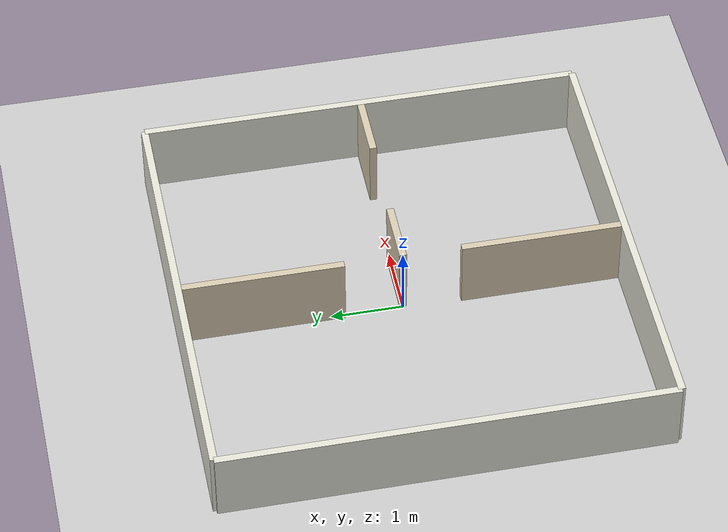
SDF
<?xml version="1.0" ?>
<sdf version="1.6">
  <world name="rosclaw_world">
    <physics name="1ms" type="ignored">
      <max_step_size>0.001</max_step_size>
      <real_time_factor>1.0</real_time_factor>
    </physics>
    <plugin filename="gz-sim-physics-system" name="gz::sim::systems::Physics"></plugin>
    <plugin filename="gz-sim-user-commands-system" name="gz::sim::systems::UserCommands"></plugin>
    <plugin filename="gz-sim-scene-broadcaster-system" name="gz::sim::systems::SceneBroadcaster"></plugin>
    <plugin filename="gz-sim-contact-system" name="gz::sim::systems::Contact"></plugin>
    <plugin filename="gz-sim-sensors-system" name="gz::sim::systems::Sensors">
      <render_engine>ogre2</render_engine>
    </plugin>
    <plugin filename="gz-sim-imu-system" name="gz::sim::systems::Imu"></plugin>

    <light type="directional" name="sun">
      <cast_shadows>true</cast_shadows>
      <pose>0 0 10 0 0 0</pose>
      <diffuse>0.8 0.8 0.8 1</diffuse>
      <specular>0.2 0.2 0.2 1</specular>
      <attenuation>
        <range>1000</range>
        <constant>0.9</constant>
        <linear>0.01</linear>
        <quadratic>0.001</quadratic>
      </attenuation>
      <direction>-0.5 0.1 -0.9</direction>
    </light>

    <model name="ground_plane">
      <static>true</static>
      <link name="link">
        <collision name="collision">
          <geometry><plane><normal>0 0 1</normal><size>100 100</size></plane></geometry>
        </collision>
        <visual name="visual">
          <geometry><plane><normal>0 0 1</normal><size>100 100</size></plane></geometry>
          <material>
            <ambient>0.8 0.8 0.8 1</ambient>
            <diffuse>0.8 0.8 0.8 1</diffuse>
            <specular>0.8 0.8 0.8 1</specular>
          </material>
        </visual>
      </link>
    </model>

    <!-- Dis sinir duvarlari -->
    <model name="wall_north"><static>true</static><pose>0 3.05 0.5 0 0 0</pose>
      <link name="link"><collision name="c"><geometry><box><size>6.1 0.1 1.0</size></box></geometry></collision>
      <visual name="v"><geometry><box><size>6.1 0.1 1.0</size></box></geometry><material><ambient>0.9 0.9 0.85 1</ambient><diffuse>0.9 0.9 0.85 1</diffuse></material></visual></link></model>
    <model name="wall_south"><static>true</static><pose>0 -3.05 0.5 0 0 0</pose>
      <link name="link"><collision name="c"><geometry><box><size>6.1 0.1 1.0</size></box></geometry></collision>
      <visual name="v"><geometry><box><size>6.1 0.1 1.0</size></box></geometry><material><ambient>0.9 0.9 0.85 1</ambient><diffuse>0.9 0.9 0.85 1</diffuse></material></visual></link></model>
    <model name="wall_west"><static>true</static><pose>-3.05 0 0.5 0 0 0</pose>
      <link name="link"><collision name="c"><geometry><box><size>0.1 6.1 1.0</size></box></geometry></collision>
      <visual name="v"><geometry><box><size>0.1 6.1 1.0</size></box></geometry><material><ambient>0.9 0.9 0.85 1</ambient><diffuse>0.9 0.9 0.85 1</diffuse></material></visual></link></model>
    <model name="wall_east"><static>true</static><pose>3.05 0 0.5 0 0 0</pose>
      <link name="link"><collision name="c"><geometry><box><size>0.1 6.1 1.0</size></box></geometry></collision>
      <visual name="v"><geometry><box><size>0.1 6.1 1.0</size></box></geometry><material><ambient>0.9 0.9 0.85 1</ambient><diffuse>0.9 0.9 0.85 1</diffuse></material></visual></link></model>

    <model name="wall_div1_north"><static>true</static><pose>0 1.9 0.5 0 0 0</pose>
      <link name="link"><collision name="c"><geometry><box><size>0.1 2.2 1.0</size></box></geometry></collision>
      <visual name="v"><geometry><box><size>0.1 2.2 1.0</size></box></geometry><material><ambient>0.85 0.8 0.7 1</ambient><diffuse>0.85 0.8 0.7 1</diffuse></material></visual></link></model>
    <model name="wall_div1_south"><static>true</static><pose>0 -1.9 0.5 0 0 0</pose>
      <link name="link"><collision name="c"><geometry><box><size>0.1 2.2 1.0</size></box></geometry></collision>
      <visual name="v"><geometry><box><size>0.1 2.2 1.0</size></box></geometry><material><ambient>0.85 0.8 0.7 1</ambient><diffuse>0.85 0.8 0.7 1</diffuse></material></visual></link></model>

    <!-- Mutfak | yatak_odasi bolme duvari (y=0, x=0..3), kapi bosluğu x=0.9..2.1 (1.2m) -->
    <model name="wall_div2_west"><static>true</static><pose>0.45 0 0.5 0 0 0</pose>
      <link name="link"><collision name="c"><geometry><box><size>0.9 0.1 1.0</size></box></geometry></collision>
      <visual name="v"><geometry><box><size>0.9 0.1 1.0</size></box></geometry><material><ambient>0.85 0.8 0.7 1</ambient><diffuse>0.85 0.8 0.7 1</diffuse></material></visual></link></model>
    <model name="wall_div2_east"><static>true</static><pose>2.55 0 0.5 0 0 0</pose>
      <link name="link"><collision name="c"><geometry><box><size>0.9 0.1 1.0</size></box></geometry></collision>
      <visual name="v"><geometry><box><size>0.9 0.1 1.0</size></box></geometry><material><ambient>0.85 0.8 0.7 1</ambient><diffuse>0.85 0.8 0.7 1</diffuse></material></visual></link></model>
  </world>
</sdf>
